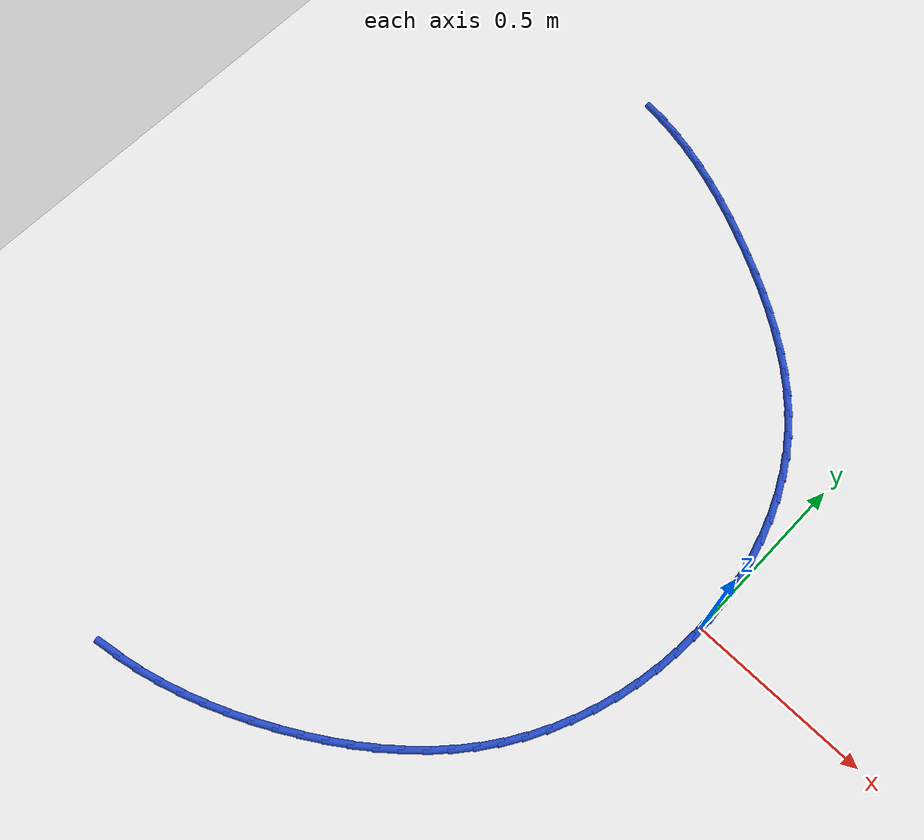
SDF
<sdf version="1.6">
 <world name="default">
  <model name="ground_plane">
   <static>1</static>
   <link name="link">
    <collision name="collision">
     <geometry><plane><normal>0 0 1</normal><size>100 100</size></plane></geometry>
     <surface><friction><ode><mu>100</mu><mu2>50</mu2></ode></friction></surface>
    </collision>
    <visual name="visual">
     <cast_shadows>0</cast_shadows>
     <geometry><plane><normal>0 0 1</normal><size>100 100</size></plane></geometry>
     <material>
      <script><uri>file://media/materials/scripts/gazebo.material</uri><name>Gazebo/WhiteGlow</name></script>
     </material>
    </visual>
   </link>
  </model>
  <model name="line">
   <link name="link_0">
    <pose>-4.85722573273506e-17 1.5265566588595902e-16 0.01 0 1.57 -1.544212773705896</pose>
    <collision name="collision">
     <geometry><cylinder><radius>0.01</radius><length>0.08</length></cylinder></geometry>
    </collision>
    <visual name="visual">
     <material>
      <script><name>Gazebo/Blue</name><uri>file://media/materials/scripts/gazebo.material</uri></script>
     </material>
     <geometry><cylinder><radius>0.01</radius><length>0.08</length></cylinder></geometry>
    </visual>
   </link>
   <link name="link_1">
    <pose>-0.0016744519382286582 0.06297342861527747 0.01 0 1.57 -1.4831774492072958</pose>
    <collision name="collision">
     <geometry><cylinder><radius>0.01</radius><length>0.08</length></cylinder></geometry>
    </collision>
    <visual name="visual">
     <material>
      <script><name>Gazebo/Blue</name><uri>file://media/materials/scripts/gazebo.material</uri></script>
     </material>
     <geometry><cylinder><radius>0.01</radius><length>0.08</length></cylinder></geometry>
    </visual>
   </link>
   <link name="link_2">
    <pose>-0.007184629982026068 0.12570043794334218 0.01 0 1.57 -1.4217492597258958</pose>
    <collision name="collision">
     <geometry><cylinder><radius>0.01</radius><length>0.08</length></cylinder></geometry>
    </collision>
    <visual name="visual">
     <material>
      <script><name>Gazebo/Blue</name><uri>file://media/materials/scripts/gazebo.material</uri></script>
     </material>
     <geometry><cylinder><radius>0.01</radius><length>0.08</length></cylinder></geometry>
    </visual>
   </link>
   <link name="link_3">
    <pose>-0.016518581348309136 0.18786020378054633 0.01 0 1.57 -1.3594514310330088</pose>
    <collision name="collision">
     <geometry><cylinder><radius>0.01</radius><length>0.08</length></cylinder></geometry>
    </collision>
    <visual name="visual">
     <material>
      <script><name>Gazebo/Blue</name><uri>file://media/materials/scripts/gazebo.material</uri></script>
     </material>
     <geometry><cylinder><radius>0.01</radius><length>0.08</length></cylinder></geometry>
    </visual>
   </link>
   <link name="link_4">
    <pose>-0.029664353253994705 0.24913190192324172 0.01 0 1.57 -1.2958117169344185</pose>
    <collision name="collision">
     <geometry><cylinder><radius>0.01</radius><length>0.08</length></cylinder></geometry>
    </collision>
    <visual name="visual">
     <material>
      <script><name>Gazebo/Blue</name><uri>file://media/materials/scripts/gazebo.material</uri></script>
     </material>
     <geometry><cylinder><radius>0.01</radius><length>0.08</length></cylinder></geometry>
    </visual>
   </link>
   <link name="link_5">
    <pose>-0.04660999291599966 0.30919470816778044 0.01 0 1.57 -1.230367554720584</pose>
    <collision name="collision">
     <geometry><cylinder><radius>0.01</radius><length>0.08</length></cylinder></geometry>
    </collision>
    <visual name="visual">
     <material>
      <script><name>Gazebo/Blue</name><uri>file://media/materials/scripts/gazebo.material</uri></script>
     </material>
     <geometry><cylinder><radius>0.01</radius><length>0.08</length></cylinder></geometry>
    </visual>
   </link>
   <link name="link_6">
    <pose>-0.06734354755124078 0.36772779831051394 0.01 0 1.57 -1.1626748098777806</pose>
    <collision name="collision">
     <geometry><cylinder><radius>0.01</radius><length>0.08</length></cylinder></geometry>
    </collision>
    <visual name="visual">
     <material>
      <script><name>Gazebo/Blue</name><uri>file://media/materials/scripts/gazebo.material</uri></script>
     </material>
     <geometry><cylinder><radius>0.01</radius><length>0.08</length></cylinder></geometry>
    </visual>
   </link>
   <link name="link_7">
    <pose>-0.09185306437663499 0.4244103481477946 0.01 0 1.57 -1.092321487062849</pose>
    <collision name="collision">
     <geometry><cylinder><radius>0.01</radius><length>0.08</length></cylinder></geometry>
    </collision>
    <visual name="visual">
     <material>
      <script><name>Gazebo/Blue</name><uri>file://media/materials/scripts/gazebo.material</uri></script>
     </material>
     <geometry><cylinder><radius>0.01</radius><length>0.08</length></cylinder></geometry>
    </visual>
   </link>
   <link name="link_8">
    <pose>-0.12012659060909917 0.4789215334759741 0.01 0 1.57 -1.0189476567821845</pose>
    <collision name="collision">
     <geometry><cylinder><radius>0.01</radius><length>0.08</length></cylinder></geometry>
    </collision>
    <visual name="visual">
     <material>
      <script><name>Gazebo/Blue</name><uri>file://media/materials/scripts/gazebo.material</uri></script>
     </material>
     <geometry><cylinder><radius>0.01</radius><length>0.08</length></cylinder></geometry>
    </visual>
   </link>
   <link name="link_9">
    <pose>-0.1521521734655501 0.5309405300914044 0.01 0 1.57 -0.9430339199694768</pose>
    <collision name="collision">
     <geometry><cylinder><radius>0.01</radius><length>0.08</length></cylinder></geometry>
    </collision>
    <visual name="visual">
     <material>
      <script><name>Gazebo/Blue</name><uri>file://media/materials/scripts/gazebo.material</uri></script>
     </material>
     <geometry><cylinder><radius>0.01</radius><length>0.08</length></cylinder></geometry>
    </visual>
   </link>
   <link name="link_10">
    <pose>-0.18789055622561188 0.5801877647113796 0.01 0 1.57 -0.8701176476283137</pose>
    <collision name="collision">
     <geometry><cylinder><radius>0.01</radius><length>0.08</length></cylinder></geometry>
    </collision>
    <visual name="visual">
     <material>
      <script><name>Gazebo/Blue</name><uri>file://media/materials/scripts/gazebo.material</uri></script>
     </material>
     <geometry><cylinder><radius>0.01</radius><length>0.08</length></cylinder></geometry>
    </visual>
   </link>
   <link name="link_11">
    <pose>-0.22710548372158013 0.6266812902632686 0.01 0 1.57 -0.8030148015923393</pose>
    <collision name="collision">
     <geometry><cylinder><radius>0.01</radius><length>0.08</length></cylinder></geometry>
    </collision>
    <visual name="visual">
     <material>
      <script><name>Gazebo/Blue</name><uri>file://media/materials/scripts/gazebo.material</uri></script>
     </material>
     <geometry><cylinder><radius>0.01</radius><length>0.08</length></cylinder></geometry>
    </visual>
   </link>
   <link name="link_12">
    <pose>-0.26947424739764225 0.6705697738726698 0.01 0 1.57 -0.7419445376732113</pose>
    <collision name="collision">
     <geometry><cylinder><radius>0.01</radius><length>0.08</length></cylinder></geometry>
    </collision>
    <visual name="visual">
     <material>
      <script><name>Gazebo/Blue</name><uri>file://media/materials/scripts/gazebo.material</uri></script>
     </material>
     <geometry><cylinder><radius>0.01</radius><length>0.08</length></cylinder></geometry>
    </visual>
   </link>
   <link name="link_13">
    <pose>-0.31467376885148435 0.7120024414310733 0.01 0 1.57 -0.6868950112531488</pose>
    <collision name="collision">
     <geometry><cylinder><radius>0.01</radius><length>0.08</length></cylinder></geometry>
    </collision>
    <visual name="visual">
     <material>
      <script><name>Gazebo/Blue</name><uri>file://media/materials/scripts/gazebo.material</uri></script>
     </material>
     <geometry><cylinder><radius>0.01</radius><length>0.08</length></cylinder></geometry>
    </visual>
   </link>
   <link name="link_14">
    <pose>-0.36238096968079214 0.7511285188299665 0.01 0 1.57 -0.6377017939145044</pose>
    <collision name="collision">
     <geometry><cylinder><radius>0.01</radius><length>0.08</length></cylinder></geometry>
    </collision>
    <visual name="visual">
     <material>
      <script><name>Gazebo/Blue</name><uri>file://media/materials/scripts/gazebo.material</uri></script>
     </material>
     <geometry><cylinder><radius>0.01</radius><length>0.08</length></cylinder></geometry>
    </visual>
   </link>
   <link name="link_15">
    <pose>-0.41227277148325187 0.7880972319608384 0.01 0 1.57 -0.5941090586921768</pose>
    <collision name="collision">
     <geometry><cylinder><radius>0.01</radius><length>0.08</length></cylinder></geometry>
    </collision>
    <visual name="visual">
     <material>
      <script><name>Gazebo/Blue</name><uri>file://media/materials/scripts/gazebo.material</uri></script>
     </material>
     <geometry><cylinder><radius>0.01</radius><length>0.08</length></cylinder></geometry>
    </visual>
   </link>
   <link name="link_16">
    <pose>-0.4640260958565495 0.8230578067151777 0.01 0 1.57 -0.5558189465350076</pose>
    <collision name="collision">
     <geometry><cylinder><radius>0.01</radius><length>0.08</length></cylinder></geometry>
    </collision>
    <visual name="visual">
     <material>
      <script><name>Gazebo/Blue</name><uri>file://media/materials/scripts/gazebo.material</uri></script>
     </material>
     <geometry><cylinder><radius>0.01</radius><length>0.08</length></cylinder></geometry>
    </visual>
   </link>
   <link name="link_17">
    <pose>-0.517317864398371 0.856159468984473 0.01 0 1.57 -0.5225285350798227</pose>
    <collision name="collision">
     <geometry><cylinder><radius>0.01</radius><length>0.08</length></cylinder></geometry>
    </collision>
    <visual name="visual">
     <material>
      <script><name>Gazebo/Blue</name><uri>file://media/materials/scripts/gazebo.material</uri></script>
     </material>
     <geometry><cylinder><radius>0.01</radius><length>0.08</length></cylinder></geometry>
    </visual>
   </link>
   <link name="link_18">
    <pose>-0.5718249987064024 0.8875514446602127 0.01 0 1.57 -0.49395615126569875</pose>
    <collision name="collision">
     <geometry><cylinder><radius>0.01</radius><length>0.08</length></cylinder></geometry>
    </collision>
    <visual name="visual">
     <material>
      <script><name>Gazebo/Blue</name><uri>file://media/materials/scripts/gazebo.material</uri></script>
     </material>
     <geometry><cylinder><radius>0.01</radius><length>0.08</length></cylinder></geometry>
    </visual>
   </link>
   <link name="link_19">
    <pose>-0.6272244207905108 0.9173829590895801 0.01 0 1.57 -0.4683632992938074</pose>
    <collision name="collision">
     <geometry><cylinder><radius>0.01</radius><length>0.08</length></cylinder></geometry>
    </collision>
    <visual name="visual">
     <material>
      <script><name>Gazebo/Blue</name><uri>file://media/materials/scripts/gazebo.material</uri></script>
     </material>
     <geometry><cylinder><radius>0.01</radius><length>0.08</length></cylinder></geometry>
    </visual>
   </link>
   <link name="link_20">
    <pose>-0.6832506871674249 0.945727128414453 0.01 0 1.57 -0.43991871680272365</pose>
    <collision name="collision">
     <geometry><cylinder><radius>0.01</radius><length>0.08</length></cylinder></geometry>
    </collision>
    <visual name="visual">
     <material>
      <script><name>Gazebo/Blue</name><uri>file://media/materials/scripts/gazebo.material</uri></script>
     </material>
     <geometry><cylinder><radius>0.01</radius><length>0.08</length></cylinder></geometry>
    </visual>
   </link>
   <link name="link_21">
    <pose>-0.7398557041934297 0.9723700476072308 0.01 0 1.57 -0.4071269423359295</pose>
    <collision name="collision">
     <geometry><cylinder><radius>0.01</radius><length>0.08</length></cylinder></geometry>
    </collision>
    <visual name="visual">
     <material>
      <script><name>Gazebo/Blue</name><uri>file://media/materials/scripts/gazebo.material</uri></script>
     </material>
     <geometry><cylinder><radius>0.01</radius><length>0.08</length></cylinder></geometry>
    </visual>
   </link>
   <link name="link_22">
    <pose>-0.7970426052064155 0.9970301638877341 0.01 0 1.57 -0.3698218688428829</pose>
    <collision name="collision">
     <geometry><cylinder><radius>0.01</radius><length>0.08</length></cylinder></geometry>
    </collision>
    <visual name="visual">
     <material>
      <script><name>Gazebo/Blue</name><uri>file://media/materials/scripts/gazebo.material</uri></script>
     </material>
     <geometry><cylinder><radius>0.01</radius><length>0.08</length></cylinder></geometry>
    </visual>
   </link>
   <link name="link_23">
    <pose>-0.8548145235442718 1.0194259244757853 0.01 0 1.57 -0.32785260242082204</pose>
    <collision name="collision">
     <geometry><cylinder><radius>0.01</radius><length>0.08</length></cylinder></geometry>
    </collision>
    <visual name="visual">
     <material>
      <script><name>Gazebo/Blue</name><uri>file://media/materials/scripts/gazebo.material</uri></script>
     </material>
     <geometry><cylinder><radius>0.01</radius><length>0.08</length></cylinder></geometry>
    </visual>
   </link>
   <link name="link_24">
    <pose>-0.9131745925448882 1.039275776591205 0.01 0 1.57 -0.281106945333334</pose>
    <collision name="collision">
     <geometry><cylinder><radius>0.01</radius><length>0.08</length></cylinder></geometry>
    </collision>
    <visual name="visual">
     <material>
      <script><name>Gazebo/Blue</name><uri>file://media/materials/scripts/gazebo.material</uri></script>
     </material>
     <geometry><cylinder><radius>0.01</radius><length>0.08</length></cylinder></geometry>
    </visual>
   </link>
   <link name="link_25">
    <pose>-0.9721259455461547 1.0562981674538152 0.01 0 1.57 -0.22954031141999906</pose>
    <collision name="collision">
     <geometry><cylinder><radius>0.01</radius><length>0.08</length></cylinder></geometry>
    </collision>
    <visual name="visual">
     <material>
      <script><name>Gazebo/Blue</name><uri>file://media/materials/scripts/gazebo.material</uri></script>
     </material>
     <geometry><cylinder><radius>0.01</radius><length>0.08</length></cylinder></geometry>
    </visual>
   </link>
   <link name="link_26">
    <pose>-1.0316717158859612 1.0702115442834372 0.01 0 1.57 -0.17320902584180056</pose>
    <collision name="collision">
     <geometry><cylinder><radius>0.01</radius><length>0.08</length></cylinder></geometry>
    </collision>
    <visual name="visual">
     <material>
      <script><name>Gazebo/Blue</name><uri>file://media/materials/scripts/gazebo.material</uri></script>
     </material>
     <geometry><cylinder><radius>0.01</radius><length>0.08</length></cylinder></geometry>
    </visual>
   </link>
   <link name="link_27">
    <pose>-1.0918150369021973 1.080734354299892 0.01 0 1.57 -0.1123051542079841</pose>
    <collision name="collision">
     <geometry><cylinder><radius>0.01</radius><length>0.08</length></cylinder></geometry>
    </collision>
    <visual name="visual">
     <material>
      <script><name>Gazebo/Blue</name><uri>file://media/materials/scripts/gazebo.material</uri></script>
     </material>
     <geometry><cylinder><radius>0.01</radius><length>0.08</length></cylinder></geometry>
    </visual>
   </link>
   <link name="link_84">
    <pose>-1.0388833873319732 -1.0700947664845437 0.01 0 1.57 0.17246332315488874</pose>
    <collision name="collision">
     <geometry><cylinder><radius>0.01</radius><length>0.08</length></cylinder></geometry>
    </collision>
    <visual name="visual">
     <material>
      <script><name>Gazebo/Blue</name><uri>file://media/materials/scripts/gazebo.material</uri></script>
     </material>
     <geometry><cylinder><radius>0.01</radius><length>0.08</length></cylinder></geometry>
    </visual>
   </link>
   <link name="link_85">
    <pose>-0.9775117495168851 -1.0594042072117913 0.01 0 1.57 0.23031468994116536</pose>
    <collision name="collision">
     <geometry><cylinder><radius>0.01</radius><length>0.08</length></cylinder></geometry>
    </collision>
    <visual name="visual">
     <material>
      <script><name>Gazebo/Blue</name><uri>file://media/materials/scripts/gazebo.material</uri></script>
     </material>
     <geometry><cylinder><radius>0.01</radius><length>0.08</length></cylinder></geometry>
    </visual>
   </link>
   <link name="link_86">
    <pose>-0.9162874014675044 -1.0450486080572672 0.01 0 1.57 0.2835377389494644</pose>
    <collision name="collision">
     <geometry><cylinder><radius>0.01</radius><length>0.08</length></cylinder></geometry>
    </collision>
    <visual name="visual">
     <material>
      <script><name>Gazebo/Blue</name><uri>file://media/materials/scripts/gazebo.material</uri></script>
     </material>
     <geometry><cylinder><radius>0.01</radius><length>0.08</length></cylinder></geometry>
    </visual>
   </link>
   <link name="link_87">
    <pose>-0.8554084258850829 -1.027309174198276 0.01 0 1.57 0.33260316110918603</pose>
    <collision name="collision">
     <geometry><cylinder><radius>0.01</radius><length>0.08</length></cylinder></geometry>
    </collision>
    <visual name="visual">
     <material>
      <script><name>Gazebo/Blue</name><uri>file://media/materials/scripts/gazebo.material</uri></script>
     </material>
     <geometry><cylinder><radius>0.01</radius><length>0.08</length></cylinder></geometry>
    </visual>
   </link>
   <link name="link_88">
    <pose>-0.7950729054708747 -1.0064671108121213 0.01 0 1.57 0.3779852870161334</pose>
    <collision name="collision">
     <geometry><cylinder><radius>0.01</radius><length>0.08</length></cylinder></geometry>
    </collision>
    <visual name="visual">
     <material>
      <script><name>Gazebo/Blue</name><uri>file://media/materials/scripts/gazebo.material</uri></script>
     </material>
     <geometry><cylinder><radius>0.01</radius><length>0.08</length></cylinder></geometry>
    </visual>
   </link>
   <link name="link_89">
    <pose>-0.7354789229261308 -0.9828036230761068 0.01 0 1.57 0.42014610124501456</pose>
    <collision name="collision">
     <geometry><cylinder><radius>0.01</radius><length>0.08</length></cylinder></geometry>
    </collision>
    <visual name="visual">
     <material>
      <script><name>Gazebo/Blue</name><uri>file://media/materials/scripts/gazebo.material</uri></script>
     </material>
     <geometry><cylinder><radius>0.01</radius><length>0.08</length></cylinder></geometry>
    </visual>
   </link>
   <link name="link_90">
    <pose>-0.6768245609521063 -0.9565999161675377 0.01 0 1.57 0.4595275402094689</pose>
    <collision name="collision">
     <geometry><cylinder><radius>0.01</radius><length>0.08</length></cylinder></geometry>
    </collision>
    <visual name="visual">
     <material>
      <script><name>Gazebo/Blue</name><uri>file://media/materials/scripts/gazebo.material</uri></script>
     </material>
     <geometry><cylinder><radius>0.01</radius><length>0.08</length></cylinder></geometry>
    </visual>
   </link>
   <link name="link_91">
    <pose>-0.6193079022500514 -0.9281371952637165 0.01 0 1.57 0.4965985211603135</pose>
    <collision name="collision">
     <geometry><cylinder><radius>0.01</radius><length>0.08</length></cylinder></geometry>
    </collision>
    <visual name="visual">
     <material>
      <script><name>Gazebo/Blue</name><uri>file://media/materials/scripts/gazebo.material</uri></script>
     </material>
     <geometry><cylinder><radius>0.01</radius><length>0.08</length></cylinder></geometry>
    </visual>
   </link>
   <link name="link_92">
    <pose>-0.5631271705959076 -0.8976931923580415 0.01 0 1.57 0.533813392404854</pose>
    <collision name="collision">
     <geometry><cylinder><radius>0.01</radius><length>0.08</length></cylinder></geometry>
    </collision>
    <visual name="visual">
     <material>
      <script><name>Gazebo/Blue</name><uri>file://media/materials/scripts/gazebo.material</uri></script>
     </material>
     <geometry><cylinder><radius>0.01</radius><length>0.08</length></cylinder></geometry>
    </visual>
   </link>
   <link name="link_93">
    <pose>-0.5084865938138714 -0.865397822962272 0.01 0 1.57 0.5742367220237025</pose>
    <collision name="collision">
     <geometry><cylinder><radius>0.01</radius><length>0.08</length></cylinder></geometry>
    </collision>
    <visual name="visual">
     <material>
      <script><name>Gazebo/Blue</name><uri>file://media/materials/scripts/gazebo.material</uri></script>
     </material>
     <geometry><cylinder><radius>0.01</radius><length>0.08</length></cylinder></geometry>
    </visual>
   </link>
   <link name="link_94">
    <pose>-0.4555985139694696 -0.831181234273141 0.01 0 1.57 0.6182765586115654</pose>
    <collision name="collision">
     <geometry><cylinder><radius>0.01</radius><length>0.08</length></cylinder></geometry>
    </collision>
    <visual name="visual">
     <material>
      <script><name>Gazebo/Blue</name><uri>file://media/materials/scripts/gazebo.material</uri></script>
     </material>
     <geometry><cylinder><radius>0.01</radius><length>0.08</length></cylinder></geometry>
    </visual>
   </link>
   <link name="link_95">
    <pose>-0.40467584827941777 -0.7949594135702889 0.01 0 1.57 0.6661207432524887</pose>
    <collision name="collision">
     <geometry><cylinder><radius>0.01</radius><length>0.08</length></cylinder></geometry>
    </collision>
    <visual name="visual">
     <material>
      <script><name>Gazebo/Blue</name><uri>file://media/materials/scripts/gazebo.material</uri></script>
     </material>
     <geometry><cylinder><radius>0.01</radius><length>0.08</length></cylinder></geometry>
    </visual>
   </link>
   <link name="link_96">
    <pose>-0.3559315139604338 -0.7566483481333582 0.01 0 1.57 0.7179174297922546</pose>
    <collision name="collision">
     <geometry><cylinder><radius>0.01</radius><length>0.08</length></cylinder></geometry>
    </collision>
    <visual name="visual">
     <material>
      <script><name>Gazebo/Blue</name><uri>file://media/materials/scripts/gazebo.material</uri></script>
     </material>
     <geometry><cylinder><radius>0.01</radius><length>0.08</length></cylinder></geometry>
    </visual>
   </link>
   <link name="link_97">
    <pose>-0.30957842822923426 -0.7161640252419902 0.01 0 1.57 0.773752015362344</pose>
    <collision name="collision">
     <geometry><cylinder><radius>0.01</radius><length>0.08</length></cylinder></geometry>
    </collision>
    <visual name="visual">
     <material>
      <script><name>Gazebo/Blue</name><uri>file://media/materials/scripts/gazebo.material</uri></script>
     </material>
     <geometry><cylinder><radius>0.01</radius><length>0.08</length></cylinder></geometry>
    </visual>
   </link>
   <link name="link_98">
    <pose>-0.2658295083025352 -0.6734224321758254 0.01 0 1.57 0.8336203899593033</pose>
    <collision name="collision">
     <geometry><cylinder><radius>0.01</radius><length>0.08</length></cylinder></geometry>
    </collision>
    <visual name="visual">
     <material>
      <script><name>Gazebo/Blue</name><uri>file://media/materials/scripts/gazebo.material</uri></script>
     </material>
     <geometry><cylinder><radius>0.01</radius><length>0.08</length></cylinder></geometry>
    </visual>
   </link>
   <link name="link_99">
    <pose>-0.2248976713970547 -0.628339556214507 0.01 0 1.57 0.8974006372223255</pose>
    <collision name="collision">
     <geometry><cylinder><radius>0.01</radius><length>0.08</length></cylinder></geometry>
    </collision>
    <visual name="visual">
     <material>
      <script><name>Gazebo/Blue</name><uri>file://media/materials/scripts/gazebo.material</uri></script>
     </material>
     <geometry><cylinder><radius>0.01</radius><length>0.08</length></cylinder></geometry>
    </visual>
   </link>
   <link name="link_100">
    <pose>-0.18699583472950856 -0.5808313846376751 0.01 0 1.57 0.9648203341620797</pose>
    <collision name="collision">
     <geometry><cylinder><radius>0.01</radius><length>0.08</length></cylinder></geometry>
    </collision>
    <visual name="visual">
     <material>
      <script><name>Gazebo/Blue</name><uri>file://media/materials/scripts/gazebo.material</uri></script>
     </material>
     <geometry><cylinder><radius>0.01</radius><length>0.08</length></cylinder></geometry>
    </visual>
   </link>
   <link name="link_101">
    <pose>-0.15233671838581406 -0.5308143282390522 0.01 0 1.57 1.0339771702372411</pose>
    <collision name="collision">
     <geometry><cylinder><radius>0.01</radius><length>0.08</length></cylinder></geometry>
    </collision>
    <visual name="visual">
     <material>
      <script><name>Gazebo/Blue</name><uri>file://media/materials/scripts/gazebo.material</uri></script>
     </material>
     <geometry><cylinder><radius>0.01</radius><length>0.08</length></cylinder></geometry>
    </visual>
   </link>
   <link name="link_102">
    <pose>-0.12108696218468694 -0.4783037962534684 0.01 0 1.57 1.101362372891357</pose>
    <collision name="collision">
     <geometry><cylinder><radius>0.01</radius><length>0.08</length></cylinder></geometry>
    </collision>
    <visual name="visual">
     <material>
      <script><name>Gazebo/Blue</name><uri>file://media/materials/scripts/gazebo.material</uri></script>
     </material>
     <geometry><cylinder><radius>0.01</radius><length>0.08</length></cylinder></geometry>
    </visual>
   </link>
   <link name="link_103">
    <pose>-0.09330820437938302 -0.4235407823562686 0.01 0 1.57 1.1667662452382186</pose>
    <collision name="collision">
     <geometry><cylinder><radius>0.01</radius><length>0.08</length></cylinder></geometry>
    </collision>
    <visual name="visual">
     <material>
      <script><name>Gazebo/Blue</name><uri>file://media/materials/scripts/gazebo.material</uri></script>
     </material>
     <geometry><cylinder><radius>0.01</radius><length>0.08</length></cylinder></geometry>
    </visual>
   </link>
   <link name="link_104">
    <pose>-0.06904753003150531 -0.36679754617184895 0.01 0 1.57 1.2305049985492535</pose>
    <collision name="collision">
     <geometry><cylinder><radius>0.01</radius><length>0.08</length></cylinder></geometry>
    </collision>
    <visual name="visual">
     <material>
      <script><name>Gazebo/Blue</name><uri>file://media/materials/scripts/gazebo.material</uri></script>
     </material>
     <geometry><cylinder><radius>0.01</radius><length>0.08</length></cylinder></geometry>
    </visual>
   </link>
   <link name="link_105">
    <pose>-0.048352024202658 -0.30834634732460864 0.01 0 1.57 1.2929180366331146</pose>
    <collision name="collision">
     <geometry><cylinder><radius>0.01</radius><length>0.08</length></cylinder></geometry>
    </collision>
    <visual name="visual">
     <material>
      <script><name>Gazebo/Blue</name><uri>file://media/materials/scripts/gazebo.material</uri></script>
     </material>
     <geometry><cylinder><radius>0.01</radius><length>0.08</length></cylinder></geometry>
    </visual>
   </link>
   <link name="link_106">
    <pose>-0.03126877195444424 -0.2484594454389437 0.01 0 1.57 1.3543579273869566</pose>
    <collision name="collision">
     <geometry><cylinder><radius>0.01</radius><length>0.08</length></cylinder></geometry>
    </collision>
    <visual name="visual">
     <material>
      <script><name>Gazebo/Blue</name><uri>file://media/materials/scripts/gazebo.material</uri></script>
     </material>
     <geometry><cylinder><radius>0.01</radius><length>0.08</length></cylinder></geometry>
    </visual>
   </link>
   <link name="link_107">
    <pose>-0.017844858348468082 -0.18740910013925333 0.01 0 1.57 1.4151830382792263</pose>
    <collision name="collision">
     <geometry><cylinder><radius>0.01</radius><length>0.08</length></cylinder></geometry>
    </collision>
    <visual name="visual">
     <material>
      <script><name>Gazebo/Blue</name><uri>file://media/materials/scripts/gazebo.material</uri></script>
     </material>
     <geometry><cylinder><radius>0.01</radius><length>0.08</length></cylinder></geometry>
    </visual>
   </link>
   <link name="link_108">
    <pose>-0.008127368446332812 -0.12546757104993364 0.01 0 1.57 1.4757520673901903</pose>
    <collision name="collision">
     <geometry><cylinder><radius>0.01</radius><length>0.08</length></cylinder></geometry>
    </collision>
    <visual name="visual">
     <material>
      <script><name>Gazebo/Blue</name><uri>file://media/materials/scripts/gazebo.material</uri></script>
     </material>
     <geometry><cylinder><radius>0.01</radius><length>0.08</length></cylinder></geometry>
    </visual>
   </link>
   <link name="link_109">
    <pose>-0.0021633873096423076 -0.06290711779538383 0.01 0 1.57 1.5364196914988815</pose>
    <collision name="collision">
     <geometry><cylinder><radius>0.01</radius><length>0.08</length></cylinder></geometry>
    </collision>
    <visual name="visual">
     <material>
      <script><name>Gazebo/Blue</name><uri>file://media/materials/scripts/gazebo.material</uri></script>
     </material>
     <geometry><cylinder><radius>0.01</radius><length>0.08</length></cylinder></geometry>
    </visual>
   </link>
   <link name="link_110">
    <pose>-7.28583859910259e-17 -1.3877787807814457e-17 0.01 0 1.57 -1.544060068898812</pose>
    <collision name="collision">
     <geometry><cylinder><radius>0.01</radius><length>0.08</length></cylinder></geometry>
    </collision>
    <visual name="visual">
     <material>
      <script><name>Gazebo/Blue</name><uri>file://media/materials/scripts/gazebo.material</uri></script>
     </material>
     <geometry><cylinder><radius>0.01</radius><length>0.08</length></cylinder></geometry>
    </visual>
   </link>
   <link name="link_111">
    <pose>-0.001684291579009796 0.06298152271181866 0.01 0 1.57 -1.5440600688988115</pose>
    <collision name="collision">
     <geometry><cylinder><radius>0.01</radius><length>0.08</length></cylinder></geometry>
    </collision>
    <visual name="visual">
     <material>
      <script><name>Gazebo/Blue</name><uri>file://media/materials/scripts/gazebo.material</uri></script>
     </material>
     <geometry><cylinder><radius>0.01</radius><length>0.08</length></cylinder></geometry>
    </visual>
   </link>
  </model>
 </world>
</sdf>
